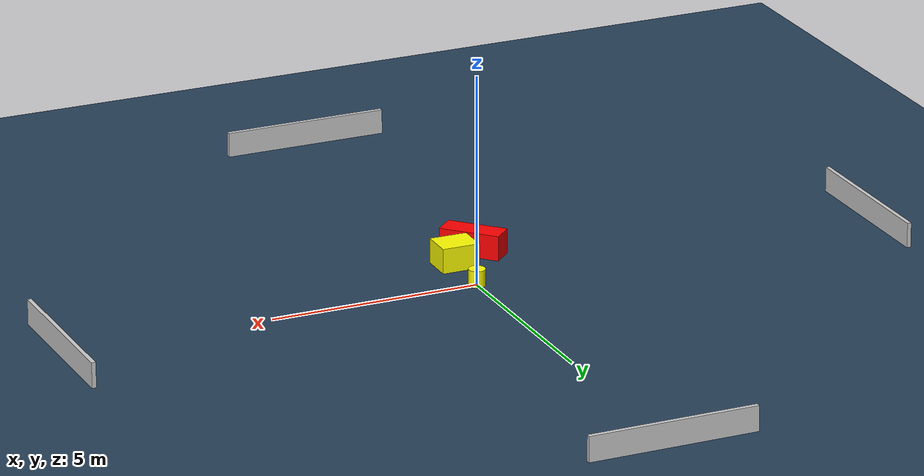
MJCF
<?xml version="1.0" ?>
<mujoco model="generated_environment">
  <option timestep="0.01" integrator="RK4" cone="elliptic"/>
  <default>
    <geom density="1"/>
  </default>
  <asset>
    <texture builtin="gradient" height="3072" name="skybox" rgb1="0.3 0.5 0.7" rgb2="0 0 0" type="skybox" width="512"/>
    <texture builtin="checker" height="300" name="groundplane" rgb1="0.2 0.3 0.4" rgb2="0.1 0.2 0.3" type="2d" width="300"/>
    <material name="groundplane" reflectance="0.2" texrepeat="5 5" texture="groundplane"/>
  </asset>
  <worldbody>
    <light dir="0 0 -1" directional="true" pos="0 0 1.5"/>
    <geom condim="3" friction="0.5 0.005 0.001" material="groundplane" name="floor" pos="0 0 0" size="0 0 0.05" type="plane"/>
    <body name="walls">
      <geom name="wall_1" condim="4" pos="-10.0 0.0 0.3" rgba="0.800000011920929 0.800000011920929 0.800000011920929 1.0" size="0.05 2.0 0.3" type="box"/>
      <geom name="wall_2" condim="4" pos="10.0 0.0 0.3" rgba="0.800000011920929 0.800000011920929 0.800000011920929 1.0" size="0.05 2.0 0.3" type="box"/>
      <geom name="wall_3" condim="4" pos="0.0 -10.0 0.3" rgba="0.800000011920929 0.800000011920929 0.800000011920929 1.0" size="2.0 0.05 0.3" type="box"/>
      <geom name="wall_4" condim="4" pos="0.0 10.0 0.3" rgba="0.800000011920929 0.800000011920929 0.800000011920929 1.0" size="2.0 0.05 0.3" type="box"/>
    </body>
    <body name="robot">
      <joint name="joint_x" type="slide" pos="0 0 0" axis="1 0 0"/>
      <joint name="joint_y" type="slide" pos="0 0 0" axis="0 1 0"/>
      <geom name="robot" type="cylinder" pos="0.0 0.0 0.2" size="0.2 0.2 0.0" mass="5.0" friction="1.0 0.005 0.0001" condim="4" rgba="1.0 1.0 0.0 1.0"/>
    </body>
    <body name="obstacle_1_movable">
      <geom name="obstacle_1_movable" condim="4" pos="-0.030937053339584 -1.2966118967819051 0.3" euler="0 0 269.11919318225216" friction="0.0 0.005 0.001" rgba="1.0 1.0 0.0 1.0" size="0.3757479890221486 0.45014951926711533 0.3" type="box" mass="0.1"/>
      <joint type="free"/>
    </body>
    <body name="obstacle_2_static">
      <geom name="obstacle_2_static" condim="4" pos="-0.7483604857383912 -1.8408023150528867 0.3" euler="0 0 223.65757169303697" friction="0.0 0.005 0.001" rgba="1.0 0.0 0.0 1.0" size="0.2784148902864461 0.7292020780528303 0.3" type="box"/>
    </body>
  </worldbody>
  <actuator>
    <motor name="actuator_x" joint="joint_x" gear="1" ctrlrange="-1 1"/>
    <motor name="actuator_y" joint="joint_y" gear="1" ctrlrange="-1 1"/>
  </actuator>
</mujoco>
